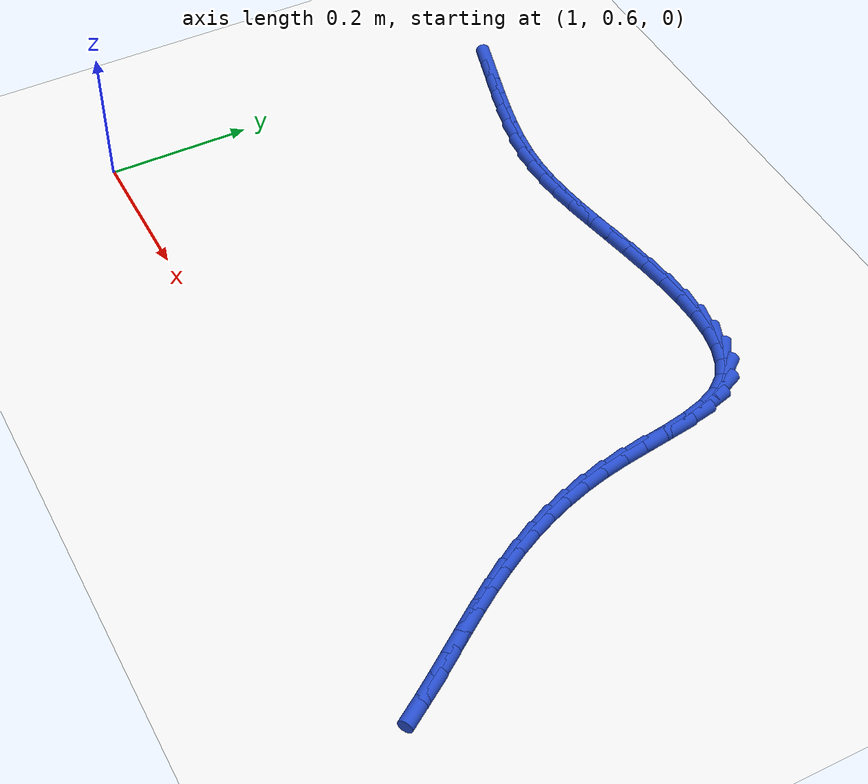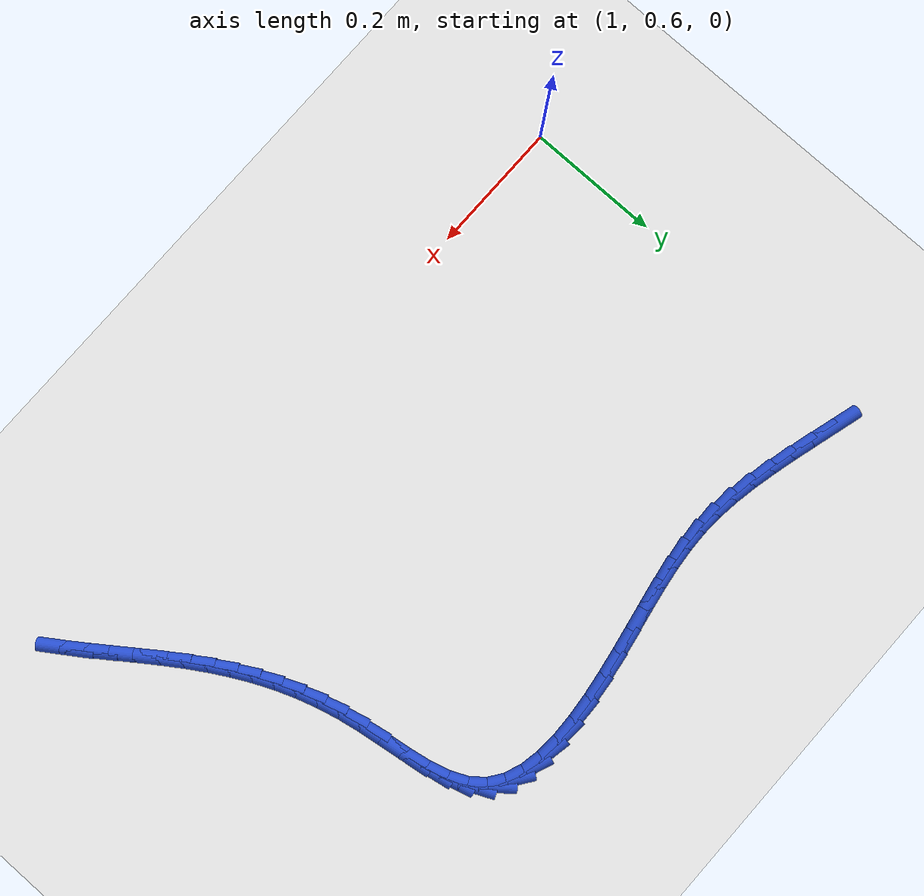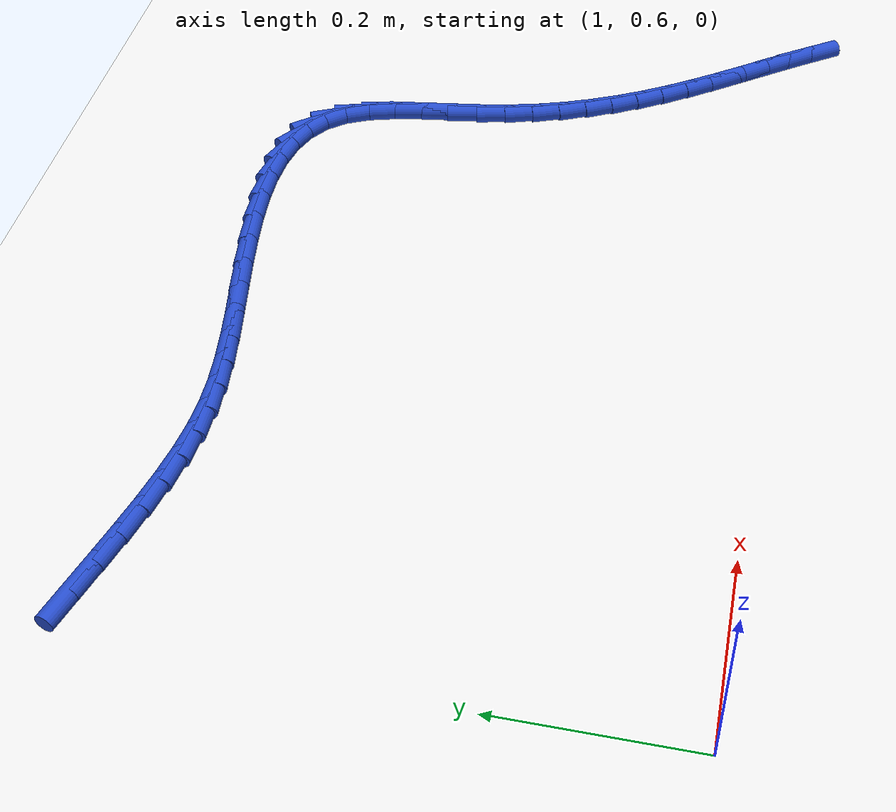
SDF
<sdf version="1.6">
 <world name="default">
  <model name="ground_plane">
   <static>1</static>
   <link name="link">
    <collision name="collision">
     <geometry><plane><normal>0 0 1</normal><size>100 100</size></plane></geometry>
     <surface><friction><ode><mu>100</mu><mu2>50</mu2></ode></friction></surface>
    </collision>
    <visual name="visual">
     <cast_shadows>0</cast_shadows>
     <geometry><plane><normal>0 0 1</normal><size>100 100</size></plane></geometry>
     <material>
      <script><uri>file://media/materials/scripts/gazebo.material</uri><name>Gazebo/WhiteGlow</name></script>
     </material>
    </visual>
   </link>
  </model>
  <model name="line">
   <link name="link_59">
    <pose>1.045308397141462 1.17884726662813 0.01 0 1.57 -0.2779239513480652</pose>
    <collision name="collision">
     <geometry><cylinder><radius>0.01</radius><length>0.08</length></cylinder></geometry>
    </collision>
    <visual name="visual">
     <material>
      <script><name>Gazebo/Blue</name><uri>file://media/materials/scripts/gazebo.material</uri></script>
     </material>
     <geometry><cylinder><radius>0.01</radius><length>0.08</length></cylinder></geometry>
    </visual>
   </link>
   <link name="link_60">
    <pose>1.0792221612653266 1.169171400053438 0.01 0 1.57 -0.273463679614006</pose>
    <collision name="collision">
     <geometry><cylinder><radius>0.01</radius><length>0.08</length></cylinder></geometry>
    </collision>
    <visual name="visual">
     <material>
      <script><name>Gazebo/Blue</name><uri>file://media/materials/scripts/gazebo.material</uri></script>
     </material>
     <geometry><cylinder><radius>0.01</radius><length>0.08</length></cylinder></geometry>
    </visual>
   </link>
   <link name="link_61">
    <pose>1.1131373810896528 1.1596584959910847 0.01 0 1.57 -0.25706280930276276</pose>
    <collision name="collision">
     <geometry><cylinder><radius>0.01</radius><length>0.08</length></cylinder></geometry>
    </collision>
    <visual name="visual">
     <material>
      <script><name>Gazebo/Blue</name><uri>file://media/materials/scripts/gazebo.material</uri></script>
     </material>
     <geometry><cylinder><radius>0.01</radius><length>0.08</length></cylinder></geometry>
    </visual>
   </link>
   <link name="link_62">
    <pose>1.1468887199278295 1.150785979815227 0.01 0 1.57 -0.22798895649781153</pose>
    <collision name="collision">
     <geometry><cylinder><radius>0.01</radius><length>0.08</length></cylinder></geometry>
    </collision>
    <visual name="visual">
     <material>
      <script><name>Gazebo/Blue</name><uri>file://media/materials/scripts/gazebo.material</uri></script>
     </material>
     <geometry><cylinder><radius>0.01</radius><length>0.08</length></cylinder></geometry>
    </visual>
   </link>
   <link name="link_63">
    <pose>1.1803108410932448 1.1430312769000215 0.01 0 1.57 -0.18492384644877874</pose>
    <collision name="collision">
     <geometry><cylinder><radius>0.01</radius><length>0.08</length></cylinder></geometry>
    </collision>
    <visual name="visual">
     <material>
      <script><name>Gazebo/Blue</name><uri>file://media/materials/scripts/gazebo.material</uri></script>
     </material>
     <geometry><cylinder><radius>0.01</radius><length>0.08</length></cylinder></geometry>
    </visual>
   </link>
   <link name="link_64">
    <pose>1.2132384078992868 1.1368718126196256 0.01 0 1.57 -0.1259823024578355</pose>
    <collision name="collision">
     <geometry><cylinder><radius>0.01</radius><length>0.08</length></cylinder></geometry>
    </collision>
    <visual name="visual">
     <material>
      <script><name>Gazebo/Blue</name><uri>file://media/materials/scripts/gazebo.material</uri></script>
     </material>
     <geometry><cylinder><radius>0.01</radius><length>0.08</length></cylinder></geometry>
    </visual>
   </link>
   <link name="link_65">
    <pose>1.2455060836593446 1.132785012348196 0.01 0 1.57 -0.05015618788711209</pose>
    <collision name="collision">
     <geometry><cylinder><radius>0.01</radius><length>0.08</length></cylinder></geometry>
    </collision>
    <visual name="visual">
     <material>
      <script><name>Gazebo/Blue</name><uri>file://media/materials/scripts/gazebo.material</uri></script>
     </material>
     <geometry><cylinder><radius>0.01</radius><length>0.08</length></cylinder></geometry>
    </visual>
   </link>
   <link name="link_66">
    <pose>1.2769869255900803 1.1312047279592974 0.01 0 1.57 0.027521372226346742</pose>
    <collision name="collision">
     <geometry><cylinder><radius>0.01</radius><length>0.08</length></cylinder></geometry>
    </collision>
    <visual name="visual">
     <material>
      <script><name>Gazebo/Blue</name><uri>file://media/materials/scripts/gazebo.material</uri></script>
     </material>
     <geometry><cylinder><radius>0.01</radius><length>0.08</length></cylinder></geometry>
    </visual>
   </link>
   <link name="link_67">
    <pose>1.308000143412656 1.1320584698305576 0.01 0 1.57 0.09246318064976324</pose>
    <collision name="collision">
     <geometry><cylinder><radius>0.01</radius><length>0.08</length></cylinder></geometry>
    </collision>
    <visual name="visual">
     <material>
      <script><name>Gazebo/Blue</name><uri>file://media/materials/scripts/gazebo.material</uri></script>
     </material>
     <geometry><cylinder><radius>0.01</radius><length>0.08</length></cylinder></geometry>
    </visual>
   </link>
   <link name="link_68">
    <pose>1.339152703329385 1.1349471715622406 0.01 0 1.57 0.14071394816189045</pose>
    <collision name="collision">
     <geometry><cylinder><radius>0.01</radius><length>0.08</length></cylinder></geometry>
    </collision>
    <visual name="visual">
     <material>
      <script><name>Gazebo/Blue</name><uri>file://media/materials/scripts/gazebo.material</uri></script>
     </material>
     <geometry><cylinder><radius>0.01</radius><length>0.08</length></cylinder></geometry>
    </visual>
   </link>
   <link name="link_69">
    <pose>1.3710563637184205 1.1394663280818265 0.01 0 1.57 0.17101251112499738</pose>
    <collision name="collision">
     <geometry><cylinder><radius>0.01</radius><length>0.08</length></cylinder></geometry>
    </collision>
    <visual name="visual">
     <material>
      <script><name>Gazebo/Blue</name><uri>file://media/materials/scripts/gazebo.material</uri></script>
     </material>
     <geometry><cylinder><radius>0.01</radius><length>0.08</length></cylinder></geometry>
    </visual>
   </link>
   <link name="link_70">
    <pose>1.4043228829579166 1.1452114343167958 0.01 0 1.57 0.18422108432755188</pose>
    <collision name="collision">
     <geometry><cylinder><radius>0.01</radius><length>0.08</length></cylinder></geometry>
    </collision>
    <visual name="visual">
     <material>
      <script><name>Gazebo/Blue</name><uri>file://media/materials/scripts/gazebo.material</uri></script>
     </material>
     <geometry><cylinder><radius>0.01</radius><length>0.08</length></cylinder></geometry>
    </visual>
   </link>
   <link name="link_71">
    <pose>1.4393754948287836 1.151742919420448 0.01 0 1.57 0.18250541481977942</pose>
    <collision name="collision">
     <geometry><cylinder><radius>0.01</radius><length>0.08</length></cylinder></geometry>
    </collision>
    <visual name="visual">
     <material>
      <script><name>Gazebo/Blue</name><uri>file://media/materials/scripts/gazebo.material</uri></script>
     </material>
     <geometry><cylinder><radius>0.01</radius><length>0.08</length></cylinder></geometry>
    </visual>
   </link>
   <link name="link_72">
    <pose>1.475761093885454 1.158458212524491 0.01 0 1.57 0.16726935308108523</pose>
    <collision name="collision">
     <geometry><cylinder><radius>0.01</radius><length>0.08</length></cylinder></geometry>
    </collision>
    <visual name="visual">
     <material>
      <script><name>Gazebo/Blue</name><uri>file://media/materials/scripts/gazebo.material</uri></script>
     </material>
     <geometry><cylinder><radius>0.01</radius><length>0.08</length></cylinder></geometry>
    </visual>
   </link>
   <link name="link_73">
    <pose>1.512772132494544 1.1647074162449913 0.01 0 1.57 0.13811753594825266</pose>
    <collision name="collision">
     <geometry><cylinder><radius>0.01</radius><length>0.08</length></cylinder></geometry>
    </collision>
    <visual name="visual">
     <material>
      <script><name>Gazebo/Blue</name><uri>file://media/materials/scripts/gazebo.material</uri></script>
     </material>
     <geometry><cylinder><radius>0.01</radius><length>0.08</length></cylinder></geometry>
    </visual>
   </link>
   <link name="link_74">
    <pose>1.5497010355291783 1.1698406280841978 0.01 0 1.57 0.09290808309150339</pose>
    <collision name="collision">
     <geometry><cylinder><radius>0.01</radius><length>0.08</length></cylinder></geometry>
    </collision>
    <visual name="visual">
     <material>
      <script><name>Gazebo/Blue</name><uri>file://media/materials/scripts/gazebo.material</uri></script>
     </material>
     <geometry><cylinder><radius>0.01</radius><length>0.08</length></cylinder></geometry>
    </visual>
   </link>
   <link name="link_75">
    <pose>1.585840227862479 1.173207945544359 0.01 0 1.57 0.027460422786744255</pose>
    <collision name="collision">
     <geometry><cylinder><radius>0.01</radius><length>0.08</length></cylinder></geometry>
    </collision>
    <visual name="visual">
     <material>
      <script><name>Gazebo/Blue</name><uri>file://media/materials/scripts/gazebo.material</uri></script>
     </material>
     <geometry><cylinder><radius>0.01</radius><length>0.08</length></cylinder></geometry>
    </visual>
   </link>
   <link name="link_76">
    <pose>1.6204821343675704 1.1741594661277228 0.01 0 1.57 -0.06508584778303701</pose>
    <collision name="collision">
     <geometry><cylinder><radius>0.01</radius><length>0.08</length></cylinder></geometry>
    </collision>
    <visual name="visual">
     <material>
      <script><name>Gazebo/Blue</name><uri>file://media/materials/scripts/gazebo.material</uri></script>
     </material>
     <geometry><cylinder><radius>0.01</radius><length>0.08</length></cylinder></geometry>
    </visual>
   </link>
   <link name="link_77">
    <pose>1.6529191799175762 1.1720452873365381 0.01 0 1.57 -0.1949472152686893</pose>
    <collision name="collision">
     <geometry><cylinder><radius>0.01</radius><length>0.08</length></cylinder></geometry>
    </collision>
    <visual name="visual">
     <material>
      <script><name>Gazebo/Blue</name><uri>file://media/materials/scripts/gazebo.material</uri></script>
     </material>
     <geometry><cylinder><radius>0.01</radius><length>0.08</length></cylinder></geometry>
    </visual>
   </link>
   <link name="link_78">
    <pose>1.6824437893856197 1.1662155066730537 0.01 0 1.57 -0.37495142412886295</pose>
    <collision name="collision">
     <geometry><cylinder><radius>0.01</radius><length>0.08</length></cylinder></geometry>
    </collision>
    <visual name="visual">
     <material>
      <script><name>Gazebo/Blue</name><uri>file://media/materials/scripts/gazebo.material</uri></script>
     </material>
     <geometry><cylinder><radius>0.01</radius><length>0.08</length></cylinder></geometry>
    </visual>
   </link>
   <link name="link_79">
    <pose>1.7083483876448244 1.1560202216395172 0.01 0 1.57 -0.6140396907915339</pose>
    <collision name="collision">
     <geometry><cylinder><radius>0.01</radius><length>0.08</length></cylinder></geometry>
    </collision>
    <visual name="visual">
     <material>
      <script><name>Gazebo/Blue</name><uri>file://media/materials/scripts/gazebo.material</uri></script>
     </material>
     <geometry><cylinder><radius>0.01</radius><length>0.08</length></cylinder></geometry>
    </visual>
   </link>
   <link name="link_80">
    <pose>1.7299253995683144 1.1408095297381784 0.01 0 1.57 -0.8982188912512087</pose>
    <collision name="collision">
     <geometry><cylinder><radius>0.01</radius><length>0.08</length></cylinder></geometry>
    </collision>
    <visual name="visual">
     <material>
      <script><name>Gazebo/Blue</name><uri>file://media/materials/scripts/gazebo.material</uri></script>
     </material>
     <geometry><cylinder><radius>0.01</radius><length>0.08</length></cylinder></geometry>
    </visual>
   </link>
   <link name="link_81">
    <pose>1.7465144581203673 1.1199809875024134 0.01 0 1.57 -1.1431930076066925</pose>
    <collision name="collision">
     <geometry><cylinder><radius>0.01</radius><length>0.08</length></cylinder></geometry>
    </collision>
    <visual name="visual">
     <material>
      <script><name>Gazebo/Blue</name><uri>file://media/materials/scripts/gazebo.material</uri></script>
     </material>
     <geometry><cylinder><radius>0.01</radius><length>0.08</length></cylinder></geometry>
    </visual>
   </link>
   <link name="link_82">
    <pose>1.7584057526951251 1.093887760686212 0.01 0 1.57 -1.2999016182407648</pose>
    <collision name="collision">
     <geometry><cylinder><radius>0.01</radius><length>0.08</length></cylinder></geometry>
    </collision>
    <visual name="visual">
     <material>
      <script><name>Gazebo/Blue</name><uri>file://media/materials/scripts/gazebo.material</uri></script>
     </material>
     <geometry><cylinder><radius>0.01</radius><length>0.08</length></cylinder></geometry>
    </visual>
   </link>
   <link name="link_83">
    <pose>1.7667704685183383 1.0637686939086526 0.01 0 1.57 -1.3890072501938664</pose>
    <collision name="collision">
     <geometry><cylinder><radius>0.01</radius><length>0.08</length></cylinder></geometry>
    </collision>
    <visual name="visual">
     <material>
      <script><name>Gazebo/Blue</name><uri>file://media/materials/scripts/gazebo.material</uri></script>
     </material>
     <geometry><cylinder><radius>0.01</radius><length>0.08</length></cylinder></geometry>
    </visual>
   </link>
   <link name="link_84">
    <pose>1.7728130615958135 1.0308960794234823 0.01 0 1.57 -1.42840777494849</pose>
    <collision name="collision">
     <geometry><cylinder><radius>0.01</radius><length>0.08</length></cylinder></geometry>
    </collision>
    <visual name="visual">
     <material>
      <script><name>Gazebo/Blue</name><uri>file://media/materials/scripts/gazebo.material</uri></script>
     </material>
     <geometry><cylinder><radius>0.01</radius><length>0.08</length></cylinder></geometry>
    </visual>
   </link>
   <link name="link_85">
    <pose>1.7777379879333575 0.9965422094844479 0.01 0 1.57 -1.4267969354166365</pose>
    <collision name="collision">
     <geometry><cylinder><radius>0.01</radius><length>0.08</length></cylinder></geometry>
    </collision>
    <visual name="visual">
     <material>
      <script><name>Gazebo/Blue</name><uri>file://media/materials/scripts/gazebo.material</uri></script>
     </material>
     <geometry><cylinder><radius>0.01</radius><length>0.08</length></cylinder></geometry>
    </visual>
   </link>
   <link name="link_86">
    <pose>1.782749703536776 0.9619793763452982 0.01 0 1.57 -1.3861924478396894</pose>
    <collision name="collision">
     <geometry><cylinder><radius>0.01</radius><length>0.08</length></cylinder></geometry>
    </collision>
    <visual name="visual">
     <material>
      <script><name>Gazebo/Blue</name><uri>file://media/materials/scripts/gazebo.material</uri></script>
     </material>
     <geometry><cylinder><radius>0.01</radius><length>0.08</length></cylinder></geometry>
    </visual>
   </link>
   <link name="link_87">
    <pose>1.789013476023631 0.9284348114887983 0.01 0 1.57 -1.3258731570928124</pose>
    <collision name="collision">
     <geometry><cylinder><radius>0.01</radius><length>0.08</length></cylinder></geometry>
    </collision>
    <visual name="visual">
     <material>
      <script><name>Gazebo/Blue</name><uri>file://media/materials/scripts/gazebo.material</uri></script>
     </material>
     <geometry><cylinder><radius>0.01</radius><length>0.08</length></cylinder></geometry>
    </visual>
   </link>
   <link name="link_88">
    <pose>1.7970279739309243 0.8963692573980244 0.01 0 1.57 -1.2651988141598163</pose>
    <collision name="collision">
     <geometry><cylinder><radius>0.01</radius><length>0.08</length></cylinder></geometry>
    </collision>
    <visual name="visual">
     <material>
      <script><name>Gazebo/Blue</name><uri>file://media/materials/scripts/gazebo.material</uri></script>
     </material>
     <geometry><cylinder><radius>0.01</radius><length>0.08</length></cylinder></geometry>
    </visual>
   </link>
   <link name="link_89">
    <pose>1.8067343174588169 0.8656023595616996 0.01 0 1.57 -1.2062308872057097</pose>
    <collision name="collision">
     <geometry><cylinder><radius>0.01</radius><length>0.08</length></cylinder></geometry>
    </collision>
    <visual name="visual">
     <material>
      <script><name>Gazebo/Blue</name><uri>file://media/materials/scripts/gazebo.material</uri></script>
     </material>
     <geometry><cylinder><radius>0.01</radius><length>0.08</length></cylinder></geometry>
    </visual>
   </link>
   <link name="link_90">
    <pose>1.8180564669827577 0.8359340322428963 0.01 0 1.57 -1.150387964654819</pose>
    <collision name="collision">
     <geometry><cylinder><radius>0.01</radius><length>0.08</length></cylinder></geometry>
    </collision>
    <visual name="visual">
     <material>
      <script><name>Gazebo/Blue</name><uri>file://media/materials/scripts/gazebo.material</uri></script>
     </material>
     <geometry><cylinder><radius>0.01</radius><length>0.08</length></cylinder></geometry>
    </visual>
   </link>
   <link name="link_91">
    <pose>1.8309183828781979 0.8071641897046873 0.01 0 1.57 -1.0989205241947506</pose>
    <collision name="collision">
     <geometry><cylinder><radius>0.01</radius><length>0.08</length></cylinder></geometry>
    </collision>
    <visual name="visual">
     <material>
      <script><name>Gazebo/Blue</name><uri>file://media/materials/scripts/gazebo.material</uri></script>
     </material>
     <geometry><cylinder><radius>0.01</radius><length>0.08</length></cylinder></geometry>
    </visual>
   </link>
   <link name="link_92">
    <pose>1.8452440255205875 0.7790927462101447 0.01 0 1.57 -1.052819626074647</pose>
    <collision name="collision">
     <geometry><cylinder><radius>0.01</radius><length>0.08</length></cylinder></geometry>
    </collision>
    <visual name="visual">
     <material>
      <script><name>Gazebo/Blue</name><uri>file://media/materials/scripts/gazebo.material</uri></script>
     </material>
     <geometry><cylinder><radius>0.01</radius><length>0.08</length></cylinder></geometry>
    </visual>
   </link>
   <link name="link_93">
    <pose>1.8609573552853762 0.7515196160223405 0.01 0 1.57 -1.012773497193369</pose>
    <collision name="collision">
     <geometry><cylinder><radius>0.01</radius><length>0.08</length></cylinder></geometry>
    </collision>
    <visual name="visual">
     <material>
      <script><name>Gazebo/Blue</name><uri>file://media/materials/scripts/gazebo.material</uri></script>
     </material>
     <geometry><cylinder><radius>0.01</radius><length>0.08</length></cylinder></geometry>
    </visual>
   </link>
   <link name="link_94">
    <pose>1.877982303548783 0.7242447264211296 0.01 0 1.57 -0.9803593926810199</pose>
    <collision name="collision">
     <geometry><cylinder><radius>0.01</radius><length>0.08</length></cylinder></geometry>
    </collision>
    <visual name="visual">
     <material>
      <script><name>Gazebo/Blue</name><uri>file://media/materials/scripts/gazebo.material</uri></script>
     </material>
     <geometry><cylinder><radius>0.01</radius><length>0.08</length></cylinder></geometry>
    </visual>
   </link>
   <link name="link_95">
    <pose>1.8961756255929931 0.6970981577807766 0.01 0 1.57 -0.9590235555260604</pose>
    <collision name="collision">
     <geometry><cylinder><radius>0.01</radius><length>0.08</length></cylinder></geometry>
    </collision>
    <visual name="visual">
     <material>
      <script><name>Gazebo/Blue</name><uri>file://media/materials/scripts/gazebo.material</uri></script>
     </material>
     <geometry><cylinder><radius>0.01</radius><length>0.08</length></cylinder></geometry>
    </visual>
   </link>
   <link name="link_96">
    <pose>1.9151834536498271 0.6700045320950605 0.01 0 1.57 -0.94879253979719</pose>
    <collision name="collision">
     <geometry><cylinder><radius>0.01</radius><length>0.08</length></cylinder></geometry>
    </collision>
    <visual name="visual">
     <material>
      <script><name>Gazebo/Blue</name><uri>file://media/materials/scripts/gazebo.material</uri></script>
     </material>
     <geometry><cylinder><radius>0.01</radius><length>0.08</length></cylinder></geometry>
    </visual>
   </link>
   <link name="link_97">
    <pose>1.9346107496896277 0.642906951306604 0.01 0 1.57 -0.9492595978606471</pose>
    <collision name="collision">
     <geometry><cylinder><radius>0.01</radius><length>0.08</length></cylinder></geometry>
    </collision>
    <visual name="visual">
     <material>
      <script><name>Gazebo/Blue</name><uri>file://media/materials/scripts/gazebo.material</uri></script>
     </material>
     <geometry><cylinder><radius>0.01</radius><length>0.08</length></cylinder></geometry>
    </visual>
   </link>
   <link name="link_98">
    <pose>1.9540624756827394 0.6157485173580292 0.01 0 1.57 -0.9603708991324614</pose>
    <collision name="collision">
     <geometry><cylinder><radius>0.01</radius><length>0.08</length></cylinder></geometry>
    </collision>
    <visual name="visual">
     <material>
      <script><name>Gazebo/Blue</name><uri>file://media/materials/scripts/gazebo.material</uri></script>
     </material>
     <geometry><cylinder><radius>0.01</radius><length>0.08</length></cylinder></geometry>
    </visual>
   </link>
   <link name="link_99">
    <pose>1.9731435935995072 0.5884723321919585 0.01 0 1.57 -0.9824176495207231</pose>
    <collision name="collision">
     <geometry><cylinder><radius>0.01</radius><length>0.08</length></cylinder></geometry>
    </collision>
    <visual name="visual">
     <material>
      <script><name>Gazebo/Blue</name><uri>file://media/materials/scripts/gazebo.material</uri></script>
     </material>
     <geometry><cylinder><radius>0.01</radius><length>0.08</length></cylinder></geometry>
    </visual>
   </link>
  </model>
 </world>
</sdf>
